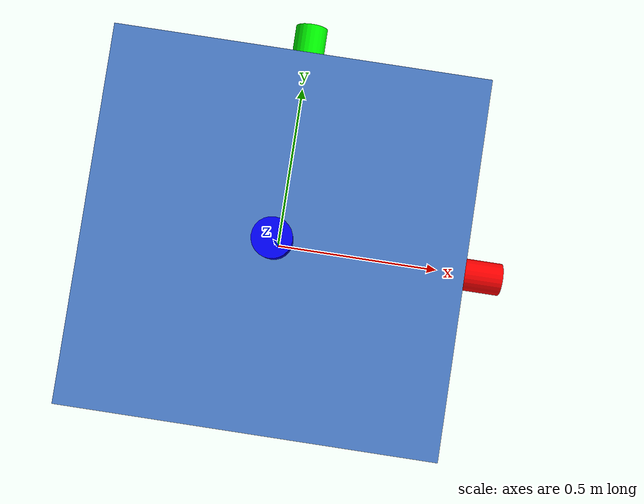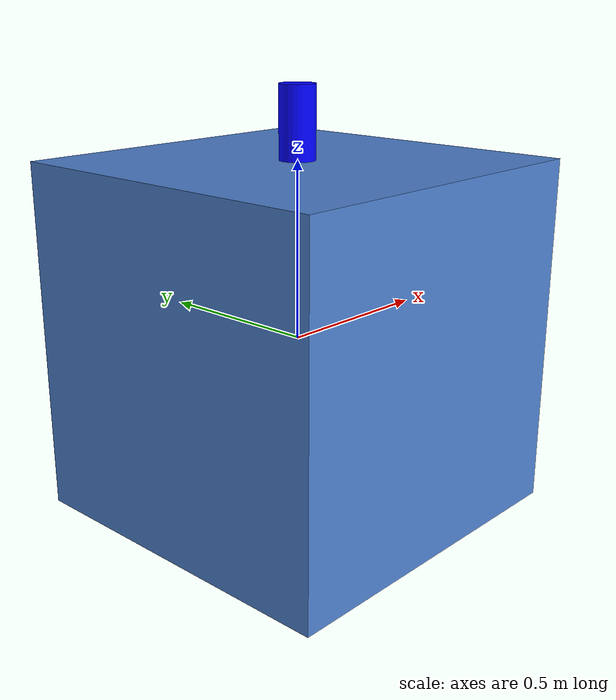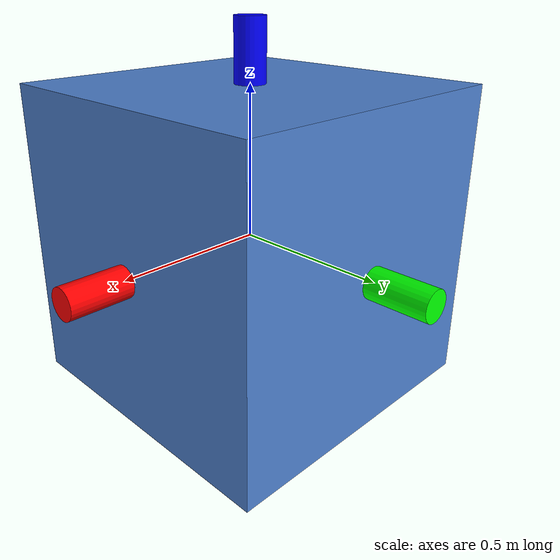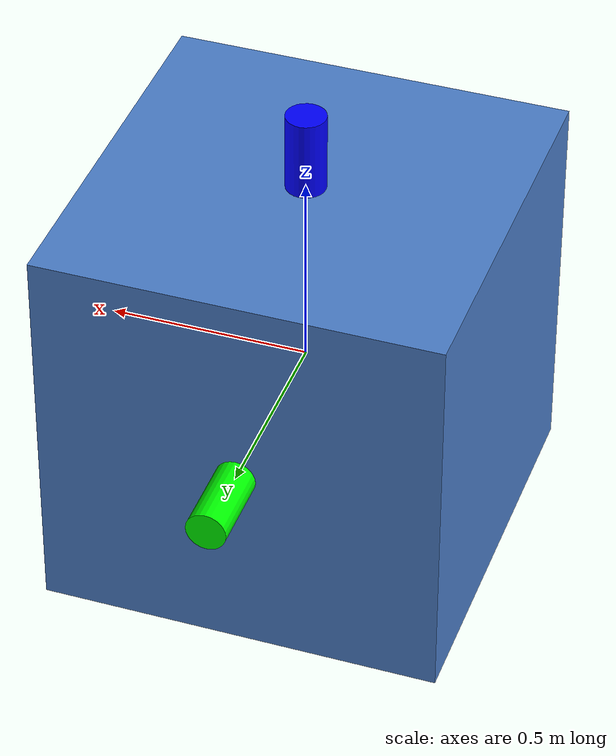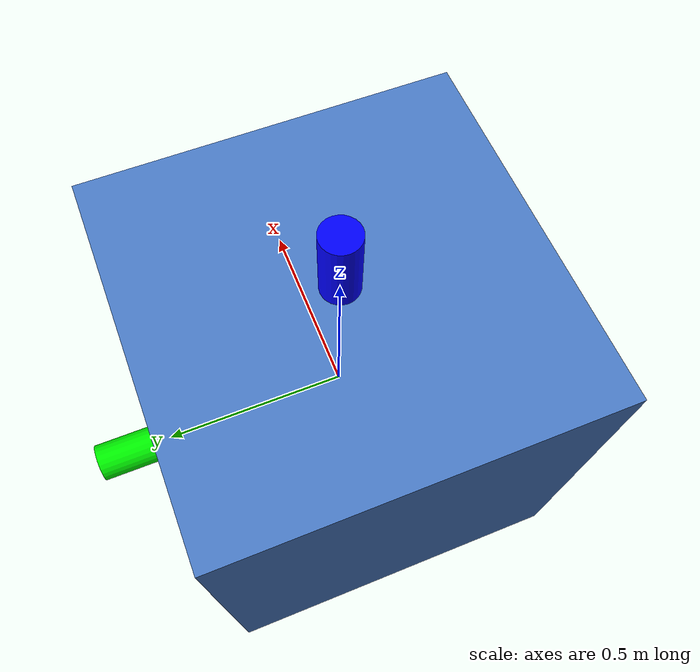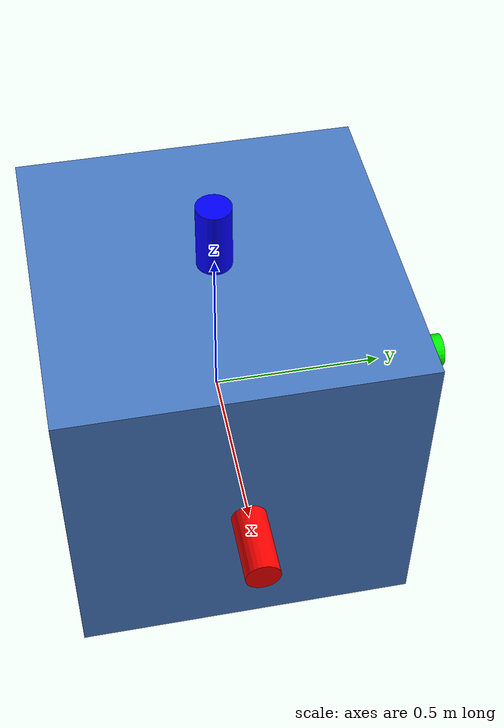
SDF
<?xml version="1.0" ?>
<sdf version="1.9">
  <world name="thruster_test">

    <physics name="10ms" type="dart">
      <max_step_size>0.01</max_step_size>
      <real_time_factor>1.0</real_time_factor>
    </physics>
    <gravity>0 0 0</gravity>

    <gui fullscreen="0">
      <plugin filename="GzScene3D" name="3D View">
        <engine>ogre2</engine>
        <scene>scene</scene>
        <background_color>0 0 0 1</background_color>
        <camera_pose>6 -6 4 0 0.5 2.356</camera_pose>
      </plugin>
    </gui>

    <scene>
      <ambient>0.4 0.4 0.4 1</ambient>
      <background>0 0 0 1</background>
      <grid>true</grid>
    </scene>

    <light type="directional" name="sun">
      <cast_shadows>true</cast_shadows>
      <pose>0 0 10 0 0 0</pose>
      <diffuse>0.9 0.9 0.9 1</diffuse>
      <direction>-0.3 -0.3 -0.9</direction>
    </light>

    <!-- ========== Deputy: 1 m box, 6 thrusters ========== -->
    <model name="deputy">
      <pose>0 0 0 0 0 0</pose>
      <link name="deputy_link">
        <inertial>
          <mass>2.6</mass>
          <inertia>
            <ixx>0.43</ixx><iyy>0.43</iyy><izz>0.43</izz>
            <ixy>0</ixy><ixz>0</ixz><iyz>0</iyz>
          </inertia>
        </inertial>
        <visual name="body_visual">
          <geometry><box><size>1 1 1</size></box></geometry>
          <material>
            <ambient>0.3 0.5 0.8 1</ambient>
            <diffuse>0.3 0.5 0.8 1</diffuse>
          </material>
        </visual>
        <collision name="body_col">
          <geometry><box><size>1 1 1</size></box></geometry>
        </collision>
        <!-- Six small axis markers for visual orientation. -->
        <visual name="axis_x">
          <pose>0.6 0 0 0 1.5708 0</pose>
          <geometry><cylinder><radius>0.05</radius><length>0.2</length></cylinder></geometry>
          <material><ambient>1 0 0 1</ambient><diffuse>1 0 0 1</diffuse></material>
        </visual>
        <visual name="axis_y">
          <pose>0 0.6 0 -1.5708 0 0</pose>
          <geometry><cylinder><radius>0.05</radius><length>0.2</length></cylinder></geometry>
          <material><ambient>0 1 0 1</ambient><diffuse>0 1 0 1</diffuse></material>
        </visual>
        <visual name="axis_z">
          <pose>0 0 0.6 0 0 0</pose>
          <geometry><cylinder><radius>0.05</radius><length>0.2</length></cylinder></geometry>
          <material><ambient>0 0 1 1</ambient><diffuse>0 0 1 1</diffuse></material>
        </visual>
      </link>

      <!-- ---- Six thrusters: one per body axis direction ---- -->
      <!-- +X: force along +body_x, nozzle on -X face -->
      <plugin filename="gz_thruster_ros2-system" name="gz_cw_dynamics::Thruster">
        <link_name>deputy_link</link_name>
        <topic>/deputy/thruster/fx_plus/cmd</topic>
        <position>-0.5 0 0</position>
        <direction>1 0 0</direction>
        <max_force>1.0</max_force>
      </plugin>
      <plugin filename="gz_thruster_ros2-system" name="gz_cw_dynamics::Thruster">
        <link_name>deputy_link</link_name>
        <topic>/deputy/thruster/fx_minus/cmd</topic>
        <position>0.5 0 0</position>
        <direction>-1 0 0</direction>
        <max_force>1.0</max_force>
      </plugin>
      <plugin filename="gz_thruster_ros2-system" name="gz_cw_dynamics::Thruster">
        <link_name>deputy_link</link_name>
        <topic>/deputy/thruster/fy_plus/cmd</topic>
        <position>0 -0.5 0</position>
        <direction>0 1 0</direction>
        <max_force>1.0</max_force>
      </plugin>
      <plugin filename="gz_thruster_ros2-system" name="gz_cw_dynamics::Thruster">
        <link_name>deputy_link</link_name>
        <topic>/deputy/thruster/fy_minus/cmd</topic>
        <position>0 0.5 0</position>
        <direction>0 -1 0</direction>
        <max_force>1.0</max_force>
      </plugin>
      <plugin filename="gz_thruster_ros2-system" name="gz_cw_dynamics::Thruster">
        <link_name>deputy_link</link_name>
        <topic>/deputy/thruster/fz_plus/cmd</topic>
        <position>0 0 -0.5</position>
        <direction>0 0 1</direction>
        <max_force>1.0</max_force>
      </plugin>
      <plugin filename="gz_thruster_ros2-system" name="gz_cw_dynamics::Thruster">
        <link_name>deputy_link</link_name>
        <topic>/deputy/thruster/fz_minus/cmd</topic>
        <position>0 0 0.5</position>
        <direction>0 0 -1</direction>
        <max_force>1.0</max_force>
      </plugin>

      <plugin filename="gz_orbit_imu-system" name="gz_cw_dynamics::OrbitImu">
        <link_name>deputy_link</link_name>
        <mean_motion>1.0959e-3</mean_motion>
        <topic>/deputy/imu/data</topic>
        <frame_id>deputy_body</frame_id>
        <pseudo_accel_topic>/deputy/cw_pseudo_accel</pseudo_accel_topic>
        <update_rate>100</update_rate>

        <!-- Noise + random-walk bias (matches MATLAB Space_SLAM IMU model,
             SI-converted from km-based params). -->
        <accel_noise_stddev>1.0e-3</accel_noise_stddev>
        <gyro_noise_stddev>1.745e-5</gyro_noise_stddev>     <!-- rad/s √s -->
        <accel_bias_rw>1.0e-6</accel_bias_rw>
        <gyro_bias_rw>1.745e-7</gyro_bias_rw>               <!-- rad/s /√s -->
        <accel_bias_init>0 0 0</accel_bias_init>
        <gyro_bias_init>0 0 0</gyro_bias_init>
        <seed>0</seed>                                      <!-- 0 = random -->
      </plugin>
    </model>

  </world>
</sdf>
